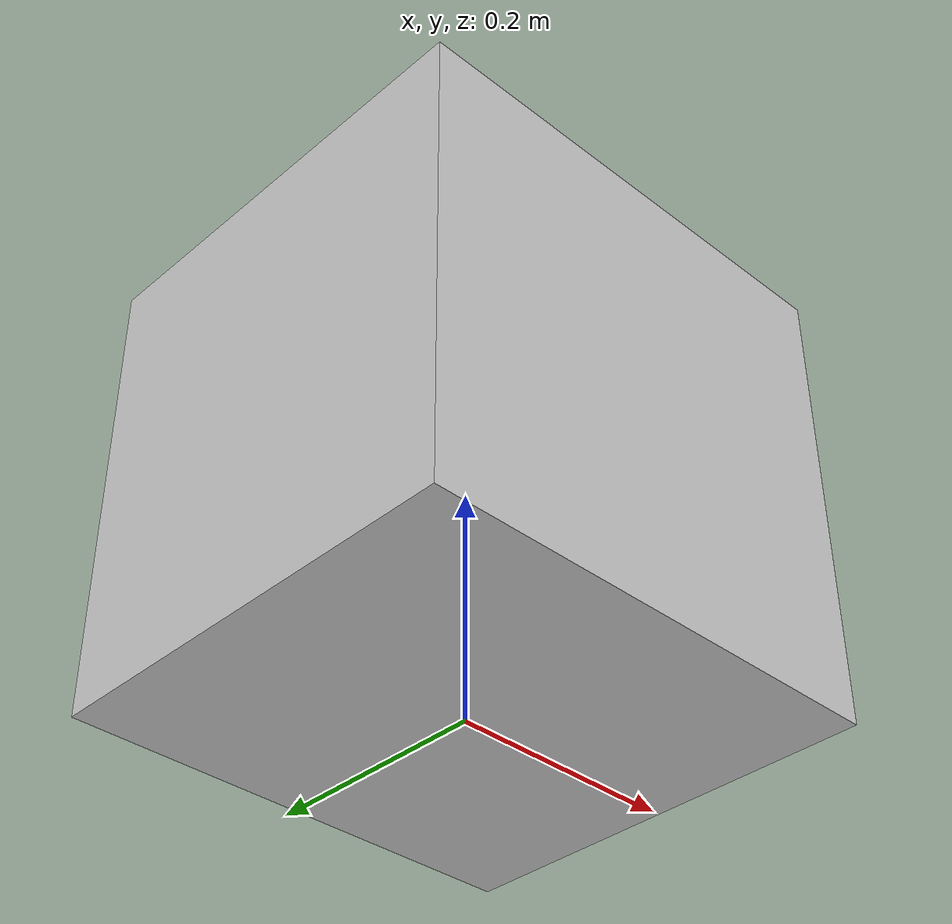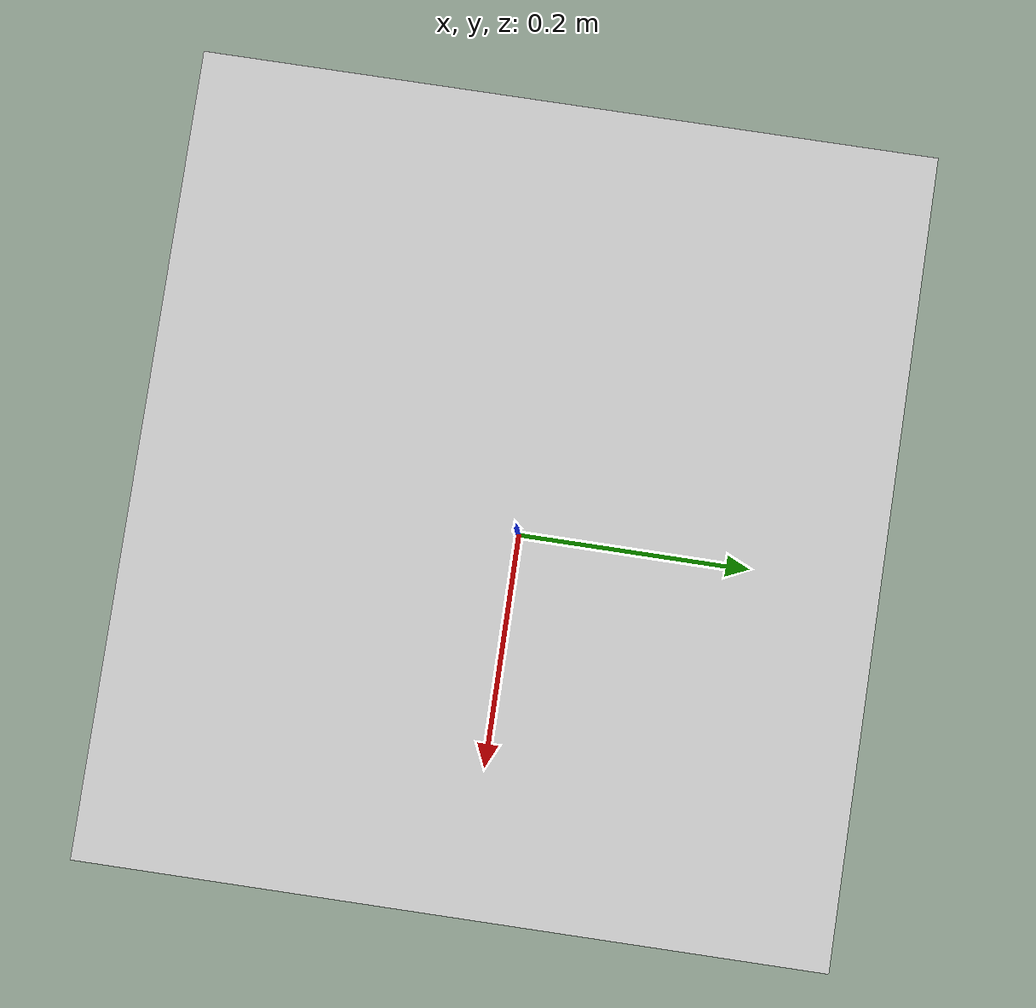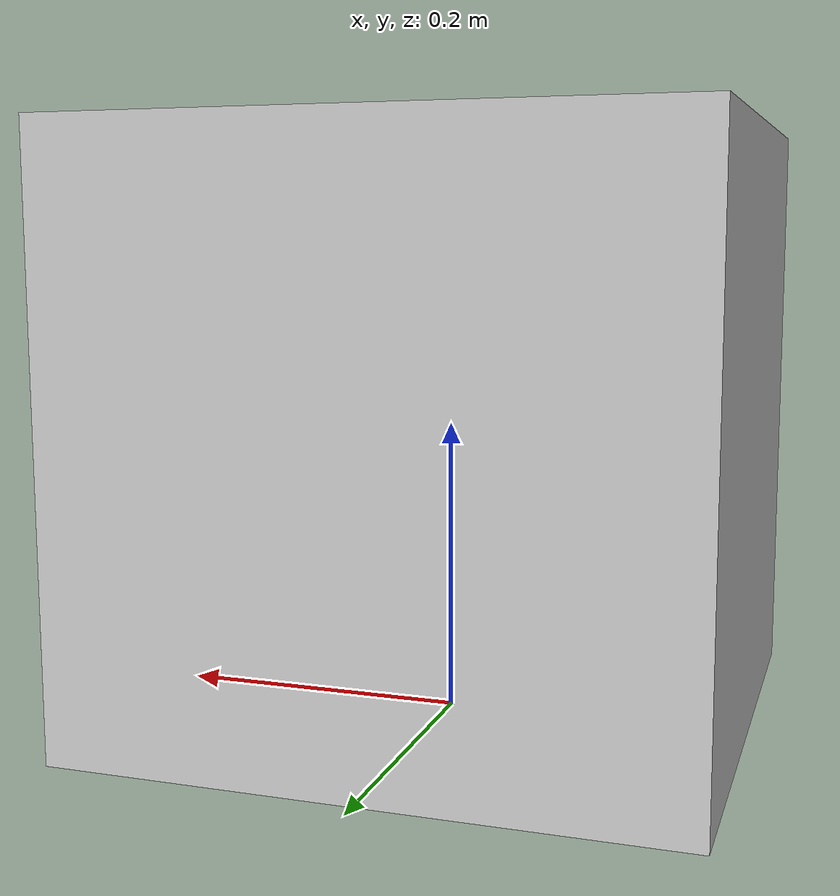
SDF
<?xml version="1.0"?>
<sdf version="1.6">
  <model name="rwc2013/nightstand2">
    <link name="1_link">
      <collision name="1_col">
        <geometry>
          <box>
            <size>0.411 0.377 0.4</size>
          </box>
        </geometry>
      </collision>
      <visual name="1_vis">
        <geometry>
          <box>
            <size>0.411 0.377 0.4</size>
          </box>
        </geometry>
        <material>
          <ambient>0.8 0.8 0.8 1</ambient>
        </material>
      </visual>
      <pose>0.0 0.0 0.2 0 0 0</pose>
    </link>
    <static>true</static>
  </model>
</sdf>
